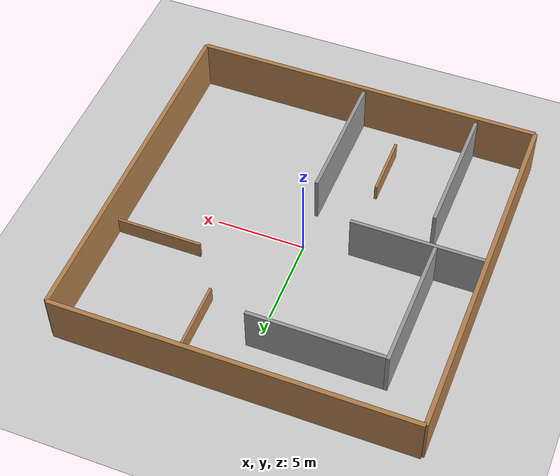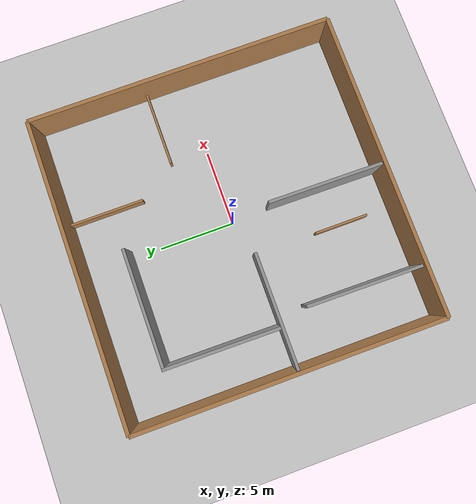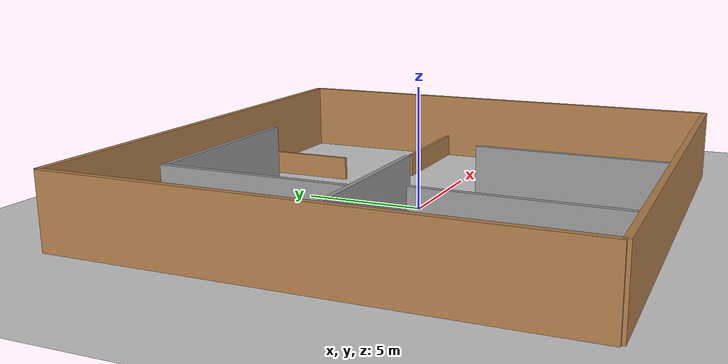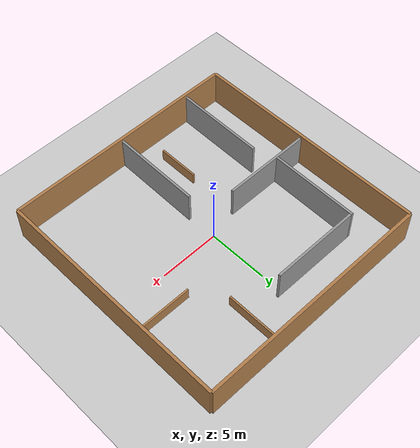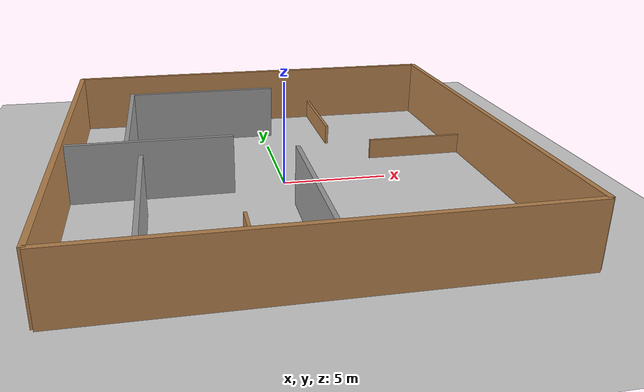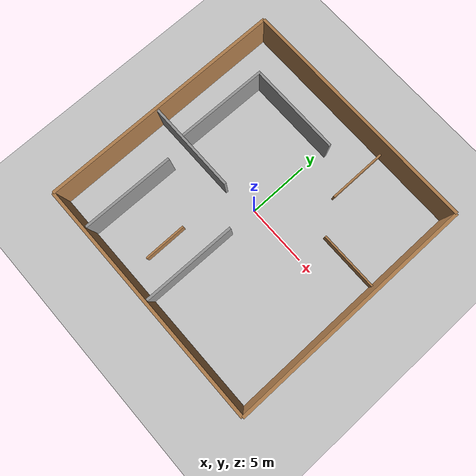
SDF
<sdf version="1.7">
 <world name="default">
  <plugin name="gazebo_ros_state" filename="libgazebo_ros_state.so">
   <ros><namespace>/test</namespace><argument>model_states:=model_states_demo</argument></ros>
   <update_rate>1.0</update_rate>
  </plugin>
  <model name="ground_plane">
   <static>1</static>
   <link name="link">
    <collision name="collision">
     <geometry><plane><normal>0 0 1</normal><size>100 100</size></plane></geometry>
     <surface>
      <contact><collide_bitmask>65535</collide_bitmask></contact>
      <friction><ode><mu>100</mu><mu2>50</mu2></ode></friction>
     </surface>
    </collision>
    <visual name="visual">
     <cast_shadows>0</cast_shadows>
     <geometry><plane><normal>0 0 1</normal><size>100 100</size></plane></geometry>
     <material>
      <script><uri>file://media/materials/scripts/gazebo.material</uri><name>Gazebo/Grey</name></script>
     </material>
    </visual>
   </link>
  </model>
  <light name="sun" type="directional">
   <pose>0 0 10 0 -0 0</pose>
   <diffuse>0.8 0.8 0.8 1</diffuse>
   <specular>0.2 0.2 0.2 1</specular>
   <attenuation>
    <range>1000</range>
    <constant>0.9</constant>
    <linear>0.01</linear>
    <quadratic>0.001</quadratic>
   </attenuation>
   <direction>-0.5 0.1 -0.9</direction>
   <spot><inner_angle>0</inner_angle><outer_angle>0</outer_angle><falloff>0</falloff></spot>
  </light>
  <scene><shadows>0</shadows><ambient>0.4 0.4 0.4 1</ambient><background>0.7 0.7 0.7 1</background></scene>
  <physics type="ode">
   <real_time_update_rate>1000</real_time_update_rate>
   <max_step_size>0.001</max_step_size>
   <real_time_factor>1</real_time_factor>
   <ode>
    <solver>
     <type>quick</type>
     <iters>150</iters>
     <precon_iters>0</precon_iters>
     <sor>1.4</sor>
     <use_dynamic_moi_rescaling>1</use_dynamic_moi_rescaling>
    </solver>
    <constraints>
     <cfm>1e-05</cfm>
     <erp>0.2</erp>
     <contact_max_correcting_vel>2000</contact_max_correcting_vel>
     <contact_surface_layer>0.01</contact_surface_layer>
    </constraints>
   </ode>
  </physics>
  <gravity>0 0 -9.8</gravity>
  <magnetic_field>6e-06 2.3e-05 -4.2e-05</magnetic_field>
  <atmosphere type="adiabatic"/>
  <spherical_coordinates>
   <surface_model>EARTH_WGS84</surface_model>
   <latitude_deg>0</latitude_deg>
   <longitude_deg>0</longitude_deg>
   <elevation>0</elevation>
   <heading_deg>0</heading_deg>
  </spherical_coordinates>
  <model name="room_square">
   <static>1</static>
   <link name="Wall_1">
    <collision name="Wall_1_Collision"><geometry><box><size>20 0.25 3</size></box></geometry></collision>
    <visual name="Wall_1_Visual">
     <geometry><box><size>20 0.25 3</size></box></geometry>
     <material>
      <script><uri>file://media/materials/scripts/gazebo.material</uri><name>Gazebo/Wood</name></script>
      <ambient>1 1 1 1</ambient>
     </material>
    </visual>
    <pose>-10 0 1.5 0 -0 1.5708</pose>
   </link>
   <link name="Wall_2">
    <collision name="Wall_2_Collision"><geometry><box><size>20 0.25 3</size></box></geometry></collision>
    <visual name="Wall_2_Visual">
     <geometry><box><size>20 0.25 3</size></box></geometry>
     <material>
      <script><uri>file://media/materials/scripts/gazebo.material</uri><name>Gazebo/Wood</name></script>
      <ambient>1 1 1 1</ambient>
     </material>
    </visual>
    <pose>0 10 1.5 0 -0 0</pose>
   </link>
   <link name="Wall_3">
    <collision name="Wall_3_Collision"><geometry><box><size>20 0.25 3</size></box></geometry></collision>
    <visual name="Wall_3_Visual">
     <geometry><box><size>20 0.25 3</size></box></geometry>
     <material>
      <script><uri>file://media/materials/scripts/gazebo.material</uri><name>Gazebo/Wood</name></script>
      <ambient>1 1 1 1</ambient>
     </material>
    </visual>
    <pose>10 0 1.5 0 0 -1.5708</pose>
   </link>
   <link name="Wall_4">
    <collision name="Wall_4_Collision"><geometry><box><size>20 0.25 3</size></box></geometry></collision>
    <visual name="Wall_4_Visual">
     <geometry><box><size>20 0.25 3</size></box></geometry>
     <material>
      <script><uri>file://media/materials/scripts/gazebo.material</uri><name>Gazebo/Wood</name></script>
      <ambient>1 1 1 1</ambient>
     </material>
    </visual>
    <pose>0 -10 1.5 0 -0 3.14159</pose>
   </link>
   <static>1</static>
  </model>
  <model name="inner_wall_1_2">
   <static>1</static>
   <link name="inner_wall_1_2">
    <collision name="inner_wall_1_2_collision"><geometry><box><size>3.5 0.15 1</size></box></geometry></collision>
    <visual name="inner_wall_1_2_visual">
     <geometry><box><size>3.5 0.15 1</size></box></geometry>
     <material>
      <script><uri>file://media/materials/scripts/gazebo.material</uri><name>Gazebo/Wood</name></script>
      <ambient>1 1 1 1</ambient>
     </material>
    </visual>
    <pose>-2.5 -6.5 0.5 0 0 -1.5708</pose>
   </link>
  </model>
  <model name="inner_wall_4">
   <static>1</static>
   <link name="inner_wall_4">
    <collision name="inner_wall_4_collision"><geometry><box><size>5 0.15 1</size></box></geometry></collision>
    <visual name="inner_wall_4_visual">
     <geometry><box><size>5 0.15 1</size></box></geometry>
     <material>
      <script><uri>file://media/materials/scripts/gazebo.material</uri><name>Gazebo/Wood</name></script>
      <ambient>1 1 1 1</ambient>
     </material>
    </visual>
    <pose>3.3 7.5 0.5 0 0 -1.5708</pose>
   </link>
  </model>
  <model name="inner_wall_5">
   <static>1</static>
   <link name="inner_wall_5">
    <collision name="inner_wall_5_collision"><geometry><box><size>5 0.15 1</size></box></geometry></collision>
    <visual name="inner_wall_5_visual">
     <geometry><box><size>5 0.15 1</size></box></geometry>
     <material>
      <script><uri>file://media/materials/scripts/gazebo.material</uri><name>Gazebo/Wood</name></script>
      <ambient>1 1 1 1</ambient>
     </material>
    </visual>
    <pose>7.5 2.5 0.5 0 -0 0</pose>
   </link>
  </model>
  <model name="grey_wall">
   <static>1</static>
   <link name="link">
    <pose>0 0 1.4 0 -0 0</pose>
    <collision name="collision"><geometry><box><size>7.5 0.2 2.8</size></box></geometry></collision>
    <visual name="visual">
     <cast_shadows>0</cast_shadows>
     <geometry><box><size>7.5 0.2 2.8</size></box></geometry>
     <material>
      <script>
       <uri>model://grey_wall/materials/scripts</uri>
       <uri>model://grey_wall/materials/textures</uri>
       <name>vrc/grey_wall</name>
      </script>
     </material>
    </visual>
   </link>
   <pose>-3.2673 6.93066 0 0 -0 0</pose>
  </model>
  <model name="grey_wall_clone_clone">
   <static>1</static>
   <link name="link">
    <pose>0 0 1.4 0 -0 0</pose>
    <collision name="collision"><geometry><box><size>7.5 0.2 2.8</size></box></geometry></collision>
    <visual name="visual">
     <cast_shadows>0</cast_shadows>
     <geometry><box><size>7.5 0.2 2.8</size></box></geometry>
     <material>
      <script>
       <uri>model://grey_wall/materials/scripts</uri>
       <uri>model://grey_wall/materials/textures</uri>
       <name>vrc/grey_wall</name>
      </script>
     </material>
    </visual>
   </link>
   <pose>-7.15458 3.2855 0 0 0 -1.58115</pose>
  </model>
  <model name="grey_wall_clone_clone_clone">
   <static>1</static>
   <link name="link">
    <pose>0 0 1.4 0 -0 0</pose>
    <collision name="collision"><geometry><box><size>7.5 0.2 2.8</size></box></geometry></collision>
    <visual name="visual">
     <cast_shadows>0</cast_shadows>
     <geometry><box><size>7.5 0.2 2.8</size></box></geometry>
     <material>
      <script>
       <uri>model://grey_wall/materials/scripts</uri>
       <uri>model://grey_wall/materials/textures</uri>
       <name>vrc/grey_wall</name>
      </script>
     </material>
    </visual>
   </link>
   <pose>0.121145 -6.12732 0 0 0 -1.58115</pose>
  </model>
  <model name="grey_wall_clone_clone_clone_clone">
   <static>1</static>
   <link name="link">
    <pose>0 0 1.4 0 -0 0</pose>
    <collision name="collision"><geometry><box><size>7.5 0.2 2.8</size></box></geometry></collision>
    <visual name="visual">
     <cast_shadows>0</cast_shadows>
     <geometry><box><size>7.5 0.2 2.8</size></box></geometry>
     <material>
      <script>
       <uri>model://grey_wall/materials/scripts</uri>
       <uri>model://grey_wall/materials/textures</uri>
       <name>vrc/grey_wall</name>
      </script>
     </material>
    </visual>
   </link>
   <pose>-6.58699 -6.07661 0 0 0 -1.58115</pose>
  </model>
  <model name="grey_wall_clone">
   <static>1</static>
   <link name="link">
    <pose>0 0 1.4 0 -0 0</pose>
    <collision name="collision"><geometry><box><size>7.5 0.2 2.8</size></box></geometry></collision>
    <visual name="visual">
     <cast_shadows>0</cast_shadows>
     <geometry><box><size>7.5 0.2 2.8</size></box></geometry>
     <material>
      <script>
       <uri>model://grey_wall/materials/scripts</uri>
       <uri>model://grey_wall/materials/textures</uri>
       <name>vrc/grey_wall</name>
      </script>
     </material>
    </visual>
   </link>
   <pose>-6.20174 -0.551315 0 0 -0 0</pose>
  </model>
 </world>
</sdf>
